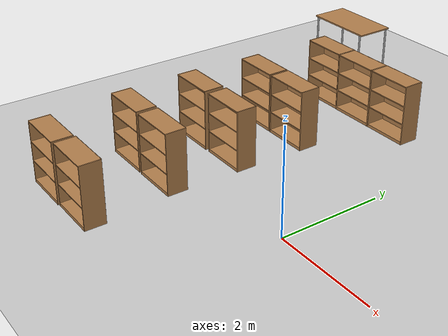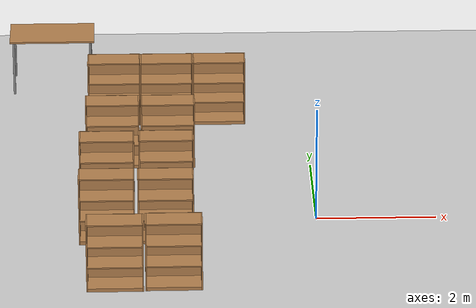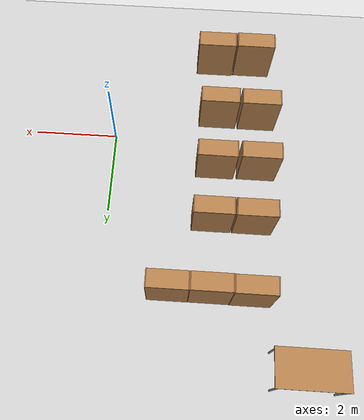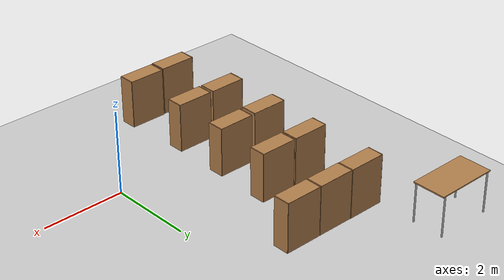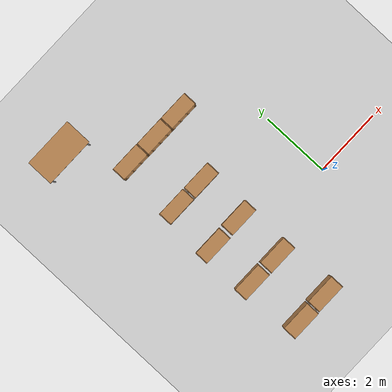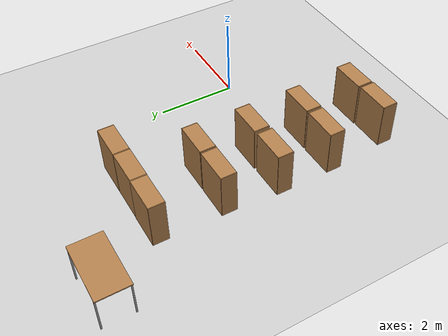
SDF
<sdf version="1.7">
 <world name="default">
  <model name="ground_plane">
   <static>1</static>
   <link name="link">
    <collision name="collision">
     <geometry><plane><normal>0 0 1</normal><size>100 100</size></plane></geometry>
     <surface>
      <contact><collide_bitmask>65535</collide_bitmask></contact>
      <friction><ode><mu>100</mu><mu2>50</mu2></ode></friction>
     </surface>
    </collision>
    <visual name="visual">
     <cast_shadows>0</cast_shadows>
     <geometry><plane><normal>0 0 1</normal><size>100 100</size></plane></geometry>
     <material>
      <script><uri>file://media/materials/scripts/gazebo.material</uri><name>Gazebo/Grey</name></script>
     </material>
    </visual>
   </link>
  </model>
  <model name="bookshelf">
   <static>1</static>
   <link name="link">
    <inertial><mass>1</mass></inertial>
    <collision name="back">
     <pose>0 0.005 0.6 0 -0 0</pose>
     <geometry><box><size>0.9 0.01 1.2</size></box></geometry>
    </collision>
    <visual name="visual1">
     <pose>0 0.005 0.6 0 -0 0</pose>
     <geometry><box><size>0.9 0.01 1.2</size></box></geometry>
     <material>
      <script><uri>file://media/materials/scripts/gazebo.material</uri><name>Gazebo/Wood</name></script>
     </material>
    </visual>
    <collision name="left_side">
     <pose>0.45 -0.195 0.6 0 -0 0</pose>
     <geometry><box><size>0.02 0.4 1.2</size></box></geometry>
    </collision>
    <visual name="visual2">
     <pose>0.45 -0.195 0.6 0 -0 0</pose>
     <geometry><box><size>0.02 0.4 1.2</size></box></geometry>
     <material>
      <script><uri>file://media/materials/scripts/gazebo.material</uri><name>Gazebo/Wood</name></script>
     </material>
    </visual>
    <collision name="right_side">
     <pose>-0.45 -0.195 0.6 0 -0 0</pose>
     <geometry><box><size>0.02 0.4 1.2</size></box></geometry>
    </collision>
    <visual name="visual3">
     <pose>-0.45 -0.195 0.6 0 -0 0</pose>
     <geometry><box><size>0.02 0.4 1.2</size></box></geometry>
     <material>
      <script><uri>file://media/materials/scripts/gazebo.material</uri><name>Gazebo/Wood</name></script>
     </material>
    </visual>
    <collision name="bottom">
     <pose>0 -0.195 0.03 0 -0 0</pose>
     <geometry><box><size>0.88 0.4 0.06</size></box></geometry>
    </collision>
    <visual name="visual4">
     <pose>0 -0.195 0.03 0 -0 0</pose>
     <geometry><box><size>0.88 0.4 0.06</size></box></geometry>
     <material>
      <script><uri>file://media/materials/scripts/gazebo.material</uri><name>Gazebo/Wood</name></script>
     </material>
    </visual>
    <collision name="top">
     <pose>0 -0.195 1.19 0 -0 0</pose>
     <geometry><box><size>0.88 0.4 0.02</size></box></geometry>
    </collision>
    <visual name="visual5">
     <pose>0 -0.195 1.19 0 -0 0</pose>
     <geometry><box><size>0.88 0.4 0.02</size></box></geometry>
     <material>
      <script><uri>file://media/materials/scripts/gazebo.material</uri><name>Gazebo/Wood</name></script>
     </material>
    </visual>
    <collision name="low_shelf">
     <pose>0 -0.195 0.43 0 -0 0</pose>
     <geometry><box><size>0.88 0.4 0.02</size></box></geometry>
    </collision>
    <visual name="visual6">
     <pose>0 -0.195 0.43 0 -0 0</pose>
     <geometry><box><size>0.88 0.4 0.02</size></box></geometry>
     <material>
      <script><uri>file://media/materials/scripts/gazebo.material</uri><name>Gazebo/Wood</name></script>
     </material>
    </visual>
    <collision name="high_shelf">
     <pose>0 -0.195 0.8 0 -0 0</pose>
     <geometry><box><size>0.88 0.4 0.02</size></box></geometry>
    </collision>
    <visual name="visual7">
     <pose>0 -0.195 0.8 0 -0 0</pose>
     <geometry><box><size>0.88 0.4 0.02</size></box></geometry>
     <material>
      <script><uri>file://media/materials/scripts/gazebo.material</uri><name>Gazebo/Wood</name></script>
     </material>
    </visual>
   </link>
   <pose>-3.36376 4.05845 0 0 -0 0</pose>
  </model>
  <model name="bookshelf_0">
   <static>1</static>
   <link name="link">
    <inertial><mass>1</mass></inertial>
    <collision name="back">
     <pose>0 0.005 0.6 0 -0 0</pose>
     <geometry><box><size>0.9 0.01 1.2</size></box></geometry>
    </collision>
    <visual name="visual1">
     <pose>0 0.005 0.6 0 -0 0</pose>
     <geometry><box><size>0.9 0.01 1.2</size></box></geometry>
     <material>
      <script><uri>file://media/materials/scripts/gazebo.material</uri><name>Gazebo/Wood</name></script>
     </material>
    </visual>
    <collision name="left_side">
     <pose>0.45 -0.195 0.6 0 -0 0</pose>
     <geometry><box><size>0.02 0.4 1.2</size></box></geometry>
    </collision>
    <visual name="visual2">
     <pose>0.45 -0.195 0.6 0 -0 0</pose>
     <geometry><box><size>0.02 0.4 1.2</size></box></geometry>
     <material>
      <script><uri>file://media/materials/scripts/gazebo.material</uri><name>Gazebo/Wood</name></script>
     </material>
    </visual>
    <collision name="right_side">
     <pose>-0.45 -0.195 0.6 0 -0 0</pose>
     <geometry><box><size>0.02 0.4 1.2</size></box></geometry>
    </collision>
    <visual name="visual3">
     <pose>-0.45 -0.195 0.6 0 -0 0</pose>
     <geometry><box><size>0.02 0.4 1.2</size></box></geometry>
     <material>
      <script><uri>file://media/materials/scripts/gazebo.material</uri><name>Gazebo/Wood</name></script>
     </material>
    </visual>
    <collision name="bottom">
     <pose>0 -0.195 0.03 0 -0 0</pose>
     <geometry><box><size>0.88 0.4 0.06</size></box></geometry>
    </collision>
    <visual name="visual4">
     <pose>0 -0.195 0.03 0 -0 0</pose>
     <geometry><box><size>0.88 0.4 0.06</size></box></geometry>
     <material>
      <script><uri>file://media/materials/scripts/gazebo.material</uri><name>Gazebo/Wood</name></script>
     </material>
    </visual>
    <collision name="top">
     <pose>0 -0.195 1.19 0 -0 0</pose>
     <geometry><box><size>0.88 0.4 0.02</size></box></geometry>
    </collision>
    <visual name="visual5">
     <pose>0 -0.195 1.19 0 -0 0</pose>
     <geometry><box><size>0.88 0.4 0.02</size></box></geometry>
     <material>
      <script><uri>file://media/materials/scripts/gazebo.material</uri><name>Gazebo/Wood</name></script>
     </material>
    </visual>
    <collision name="low_shelf">
     <pose>0 -0.195 0.43 0 -0 0</pose>
     <geometry><box><size>0.88 0.4 0.02</size></box></geometry>
    </collision>
    <visual name="visual6">
     <pose>0 -0.195 0.43 0 -0 0</pose>
     <geometry><box><size>0.88 0.4 0.02</size></box></geometry>
     <material>
      <script><uri>file://media/materials/scripts/gazebo.material</uri><name>Gazebo/Wood</name></script>
     </material>
    </visual>
    <collision name="high_shelf">
     <pose>0 -0.195 0.8 0 -0 0</pose>
     <geometry><box><size>0.88 0.4 0.02</size></box></geometry>
    </collision>
    <visual name="visual7">
     <pose>0 -0.195 0.8 0 -0 0</pose>
     <geometry><box><size>0.88 0.4 0.02</size></box></geometry>
     <material>
      <script><uri>file://media/materials/scripts/gazebo.material</uri><name>Gazebo/Wood</name></script>
     </material>
    </visual>
   </link>
   <pose>-2.44784 4.05211 0 0 -0 0</pose>
  </model>
  <model name="bookshelf_1">
   <static>1</static>
   <link name="link">
    <inertial><mass>1</mass></inertial>
    <collision name="back">
     <pose>0 0.005 0.6 0 -0 0</pose>
     <geometry><box><size>0.9 0.01 1.2</size></box></geometry>
    </collision>
    <visual name="visual1">
     <pose>0 0.005 0.6 0 -0 0</pose>
     <geometry><box><size>0.9 0.01 1.2</size></box></geometry>
     <material>
      <script><uri>file://media/materials/scripts/gazebo.material</uri><name>Gazebo/Wood</name></script>
     </material>
    </visual>
    <collision name="left_side">
     <pose>0.45 -0.195 0.6 0 -0 0</pose>
     <geometry><box><size>0.02 0.4 1.2</size></box></geometry>
    </collision>
    <visual name="visual2">
     <pose>0.45 -0.195 0.6 0 -0 0</pose>
     <geometry><box><size>0.02 0.4 1.2</size></box></geometry>
     <material>
      <script><uri>file://media/materials/scripts/gazebo.material</uri><name>Gazebo/Wood</name></script>
     </material>
    </visual>
    <collision name="right_side">
     <pose>-0.45 -0.195 0.6 0 -0 0</pose>
     <geometry><box><size>0.02 0.4 1.2</size></box></geometry>
    </collision>
    <visual name="visual3">
     <pose>-0.45 -0.195 0.6 0 -0 0</pose>
     <geometry><box><size>0.02 0.4 1.2</size></box></geometry>
     <material>
      <script><uri>file://media/materials/scripts/gazebo.material</uri><name>Gazebo/Wood</name></script>
     </material>
    </visual>
    <collision name="bottom">
     <pose>0 -0.195 0.03 0 -0 0</pose>
     <geometry><box><size>0.88 0.4 0.06</size></box></geometry>
    </collision>
    <visual name="visual4">
     <pose>0 -0.195 0.03 0 -0 0</pose>
     <geometry><box><size>0.88 0.4 0.06</size></box></geometry>
     <material>
      <script><uri>file://media/materials/scripts/gazebo.material</uri><name>Gazebo/Wood</name></script>
     </material>
    </visual>
    <collision name="top">
     <pose>0 -0.195 1.19 0 -0 0</pose>
     <geometry><box><size>0.88 0.4 0.02</size></box></geometry>
    </collision>
    <visual name="visual5">
     <pose>0 -0.195 1.19 0 -0 0</pose>
     <geometry><box><size>0.88 0.4 0.02</size></box></geometry>
     <material>
      <script><uri>file://media/materials/scripts/gazebo.material</uri><name>Gazebo/Wood</name></script>
     </material>
    </visual>
    <collision name="low_shelf">
     <pose>0 -0.195 0.43 0 -0 0</pose>
     <geometry><box><size>0.88 0.4 0.02</size></box></geometry>
    </collision>
    <visual name="visual6">
     <pose>0 -0.195 0.43 0 -0 0</pose>
     <geometry><box><size>0.88 0.4 0.02</size></box></geometry>
     <material>
      <script><uri>file://media/materials/scripts/gazebo.material</uri><name>Gazebo/Wood</name></script>
     </material>
    </visual>
    <collision name="high_shelf">
     <pose>0 -0.195 0.8 0 -0 0</pose>
     <geometry><box><size>0.88 0.4 0.02</size></box></geometry>
    </collision>
    <visual name="visual7">
     <pose>0 -0.195 0.8 0 -0 0</pose>
     <geometry><box><size>0.88 0.4 0.02</size></box></geometry>
     <material>
      <script><uri>file://media/materials/scripts/gazebo.material</uri><name>Gazebo/Wood</name></script>
     </material>
    </visual>
   </link>
   <pose>-1.52934 4.05379 0 0 -0 0</pose>
  </model>
  <model name="bookshelf_9">
   <static>1</static>
   <link name="link">
    <inertial><mass>1</mass></inertial>
    <collision name="back">
     <pose>0 0.005 0.6 0 -0 0</pose>
     <geometry><box><size>0.9 0.01 1.2</size></box></geometry>
    </collision>
    <visual name="visual1">
     <pose>0 0.005 0.6 0 -0 0</pose>
     <geometry><box><size>0.9 0.01 1.2</size></box></geometry>
     <material>
      <script><uri>file://media/materials/scripts/gazebo.material</uri><name>Gazebo/Wood</name></script>
     </material>
    </visual>
    <collision name="left_side">
     <pose>0.45 -0.195 0.6 0 -0 0</pose>
     <geometry><box><size>0.02 0.4 1.2</size></box></geometry>
    </collision>
    <visual name="visual2">
     <pose>0.45 -0.195 0.6 0 -0 0</pose>
     <geometry><box><size>0.02 0.4 1.2</size></box></geometry>
     <material>
      <script><uri>file://media/materials/scripts/gazebo.material</uri><name>Gazebo/Wood</name></script>
     </material>
    </visual>
    <collision name="right_side">
     <pose>-0.45 -0.195 0.6 0 -0 0</pose>
     <geometry><box><size>0.02 0.4 1.2</size></box></geometry>
    </collision>
    <visual name="visual3">
     <pose>-0.45 -0.195 0.6 0 -0 0</pose>
     <geometry><box><size>0.02 0.4 1.2</size></box></geometry>
     <material>
      <script><uri>file://media/materials/scripts/gazebo.material</uri><name>Gazebo/Wood</name></script>
     </material>
    </visual>
    <collision name="bottom">
     <pose>0 -0.195 0.03 0 -0 0</pose>
     <geometry><box><size>0.88 0.4 0.06</size></box></geometry>
    </collision>
    <visual name="visual4">
     <pose>0 -0.195 0.03 0 -0 0</pose>
     <geometry><box><size>0.88 0.4 0.06</size></box></geometry>
     <material>
      <script><uri>file://media/materials/scripts/gazebo.material</uri><name>Gazebo/Wood</name></script>
     </material>
    </visual>
    <collision name="top">
     <pose>0 -0.195 1.19 0 -0 0</pose>
     <geometry><box><size>0.88 0.4 0.02</size></box></geometry>
    </collision>
    <visual name="visual5">
     <pose>0 -0.195 1.19 0 -0 0</pose>
     <geometry><box><size>0.88 0.4 0.02</size></box></geometry>
     <material>
      <script><uri>file://media/materials/scripts/gazebo.material</uri><name>Gazebo/Wood</name></script>
     </material>
    </visual>
    <collision name="low_shelf">
     <pose>0 -0.195 0.43 0 -0 0</pose>
     <geometry><box><size>0.88 0.4 0.02</size></box></geometry>
    </collision>
    <visual name="visual6">
     <pose>0 -0.195 0.43 0 -0 0</pose>
     <geometry><box><size>0.88 0.4 0.02</size></box></geometry>
     <material>
      <script><uri>file://media/materials/scripts/gazebo.material</uri><name>Gazebo/Wood</name></script>
     </material>
    </visual>
    <collision name="high_shelf">
     <pose>0 -0.195 0.8 0 -0 0</pose>
     <geometry><box><size>0.88 0.4 0.02</size></box></geometry>
    </collision>
    <visual name="visual7">
     <pose>0 -0.195 0.8 0 -0 0</pose>
     <geometry><box><size>0.88 0.4 0.02</size></box></geometry>
     <material>
      <script><uri>file://media/materials/scripts/gazebo.material</uri><name>Gazebo/Wood</name></script>
     </material>
    </visual>
   </link>
   <pose>-2.44539 2.36269 0 0 -0 0</pose>
  </model>
  <model name="bookshelf_10">
   <static>1</static>
   <link name="link">
    <inertial><mass>1</mass></inertial>
    <collision name="back">
     <pose>0 0.005 0.6 0 -0 0</pose>
     <geometry><box><size>0.9 0.01 1.2</size></box></geometry>
    </collision>
    <visual name="visual1">
     <pose>0 0.005 0.6 0 -0 0</pose>
     <geometry><box><size>0.9 0.01 1.2</size></box></geometry>
     <material>
      <script><uri>file://media/materials/scripts/gazebo.material</uri><name>Gazebo/Wood</name></script>
     </material>
    </visual>
    <collision name="left_side">
     <pose>0.45 -0.195 0.6 0 -0 0</pose>
     <geometry><box><size>0.02 0.4 1.2</size></box></geometry>
    </collision>
    <visual name="visual2">
     <pose>0.45 -0.195 0.6 0 -0 0</pose>
     <geometry><box><size>0.02 0.4 1.2</size></box></geometry>
     <material>
      <script><uri>file://media/materials/scripts/gazebo.material</uri><name>Gazebo/Wood</name></script>
     </material>
    </visual>
    <collision name="right_side">
     <pose>-0.45 -0.195 0.6 0 -0 0</pose>
     <geometry><box><size>0.02 0.4 1.2</size></box></geometry>
    </collision>
    <visual name="visual3">
     <pose>-0.45 -0.195 0.6 0 -0 0</pose>
     <geometry><box><size>0.02 0.4 1.2</size></box></geometry>
     <material>
      <script><uri>file://media/materials/scripts/gazebo.material</uri><name>Gazebo/Wood</name></script>
     </material>
    </visual>
    <collision name="bottom">
     <pose>0 -0.195 0.03 0 -0 0</pose>
     <geometry><box><size>0.88 0.4 0.06</size></box></geometry>
    </collision>
    <visual name="visual4">
     <pose>0 -0.195 0.03 0 -0 0</pose>
     <geometry><box><size>0.88 0.4 0.06</size></box></geometry>
     <material>
      <script><uri>file://media/materials/scripts/gazebo.material</uri><name>Gazebo/Wood</name></script>
     </material>
    </visual>
    <collision name="top">
     <pose>0 -0.195 1.19 0 -0 0</pose>
     <geometry><box><size>0.88 0.4 0.02</size></box></geometry>
    </collision>
    <visual name="visual5">
     <pose>0 -0.195 1.19 0 -0 0</pose>
     <geometry><box><size>0.88 0.4 0.02</size></box></geometry>
     <material>
      <script><uri>file://media/materials/scripts/gazebo.material</uri><name>Gazebo/Wood</name></script>
     </material>
    </visual>
    <collision name="low_shelf">
     <pose>0 -0.195 0.43 0 -0 0</pose>
     <geometry><box><size>0.88 0.4 0.02</size></box></geometry>
    </collision>
    <visual name="visual6">
     <pose>0 -0.195 0.43 0 -0 0</pose>
     <geometry><box><size>0.88 0.4 0.02</size></box></geometry>
     <material>
      <script><uri>file://media/materials/scripts/gazebo.material</uri><name>Gazebo/Wood</name></script>
     </material>
    </visual>
    <collision name="high_shelf">
     <pose>0 -0.195 0.8 0 -0 0</pose>
     <geometry><box><size>0.88 0.4 0.02</size></box></geometry>
    </collision>
    <visual name="visual7">
     <pose>0 -0.195 0.8 0 -0 0</pose>
     <geometry><box><size>0.88 0.4 0.02</size></box></geometry>
     <material>
      <script><uri>file://media/materials/scripts/gazebo.material</uri><name>Gazebo/Wood</name></script>
     </material>
    </visual>
   </link>
   <pose>-3.39073 2.36423 0 0 -0 0</pose>
  </model>
  <model name="bookshelf_11">
   <static>1</static>
   <link name="link">
    <inertial><mass>1</mass></inertial>
    <collision name="back">
     <pose>0 0.005 0.6 0 -0 0</pose>
     <geometry><box><size>0.9 0.01 1.2</size></box></geometry>
    </collision>
    <visual name="visual1">
     <pose>0 0.005 0.6 0 -0 0</pose>
     <geometry><box><size>0.9 0.01 1.2</size></box></geometry>
     <material>
      <script><uri>file://media/materials/scripts/gazebo.material</uri><name>Gazebo/Wood</name></script>
     </material>
    </visual>
    <collision name="left_side">
     <pose>0.45 -0.195 0.6 0 -0 0</pose>
     <geometry><box><size>0.02 0.4 1.2</size></box></geometry>
    </collision>
    <visual name="visual2">
     <pose>0.45 -0.195 0.6 0 -0 0</pose>
     <geometry><box><size>0.02 0.4 1.2</size></box></geometry>
     <material>
      <script><uri>file://media/materials/scripts/gazebo.material</uri><name>Gazebo/Wood</name></script>
     </material>
    </visual>
    <collision name="right_side">
     <pose>-0.45 -0.195 0.6 0 -0 0</pose>
     <geometry><box><size>0.02 0.4 1.2</size></box></geometry>
    </collision>
    <visual name="visual3">
     <pose>-0.45 -0.195 0.6 0 -0 0</pose>
     <geometry><box><size>0.02 0.4 1.2</size></box></geometry>
     <material>
      <script><uri>file://media/materials/scripts/gazebo.material</uri><name>Gazebo/Wood</name></script>
     </material>
    </visual>
    <collision name="bottom">
     <pose>0 -0.195 0.03 0 -0 0</pose>
     <geometry><box><size>0.88 0.4 0.06</size></box></geometry>
    </collision>
    <visual name="visual4">
     <pose>0 -0.195 0.03 0 -0 0</pose>
     <geometry><box><size>0.88 0.4 0.06</size></box></geometry>
     <material>
      <script><uri>file://media/materials/scripts/gazebo.material</uri><name>Gazebo/Wood</name></script>
     </material>
    </visual>
    <collision name="top">
     <pose>0 -0.195 1.19 0 -0 0</pose>
     <geometry><box><size>0.88 0.4 0.02</size></box></geometry>
    </collision>
    <visual name="visual5">
     <pose>0 -0.195 1.19 0 -0 0</pose>
     <geometry><box><size>0.88 0.4 0.02</size></box></geometry>
     <material>
      <script><uri>file://media/materials/scripts/gazebo.material</uri><name>Gazebo/Wood</name></script>
     </material>
    </visual>
    <collision name="low_shelf">
     <pose>0 -0.195 0.43 0 -0 0</pose>
     <geometry><box><size>0.88 0.4 0.02</size></box></geometry>
    </collision>
    <visual name="visual6">
     <pose>0 -0.195 0.43 0 -0 0</pose>
     <geometry><box><size>0.88 0.4 0.02</size></box></geometry>
     <material>
      <script><uri>file://media/materials/scripts/gazebo.material</uri><name>Gazebo/Wood</name></script>
     </material>
    </visual>
    <collision name="high_shelf">
     <pose>0 -0.195 0.8 0 -0 0</pose>
     <geometry><box><size>0.88 0.4 0.02</size></box></geometry>
    </collision>
    <visual name="visual7">
     <pose>0 -0.195 0.8 0 -0 0</pose>
     <geometry><box><size>0.88 0.4 0.02</size></box></geometry>
     <material>
      <script><uri>file://media/materials/scripts/gazebo.material</uri><name>Gazebo/Wood</name></script>
     </material>
    </visual>
   </link>
   <pose>-3.48659 0.963539 0 0 -0 0</pose>
  </model>
  <model name="bookshelf_12">
   <static>1</static>
   <link name="link">
    <inertial><mass>1</mass></inertial>
    <collision name="back">
     <pose>0 0.005 0.6 0 -0 0</pose>
     <geometry><box><size>0.9 0.01 1.2</size></box></geometry>
    </collision>
    <visual name="visual1">
     <pose>0 0.005 0.6 0 -0 0</pose>
     <geometry><box><size>0.9 0.01 1.2</size></box></geometry>
     <material>
      <script><uri>file://media/materials/scripts/gazebo.material</uri><name>Gazebo/Wood</name></script>
     </material>
    </visual>
    <collision name="left_side">
     <pose>0.45 -0.195 0.6 0 -0 0</pose>
     <geometry><box><size>0.02 0.4 1.2</size></box></geometry>
    </collision>
    <visual name="visual2">
     <pose>0.45 -0.195 0.6 0 -0 0</pose>
     <geometry><box><size>0.02 0.4 1.2</size></box></geometry>
     <material>
      <script><uri>file://media/materials/scripts/gazebo.material</uri><name>Gazebo/Wood</name></script>
     </material>
    </visual>
    <collision name="right_side">
     <pose>-0.45 -0.195 0.6 0 -0 0</pose>
     <geometry><box><size>0.02 0.4 1.2</size></box></geometry>
    </collision>
    <visual name="visual3">
     <pose>-0.45 -0.195 0.6 0 -0 0</pose>
     <geometry><box><size>0.02 0.4 1.2</size></box></geometry>
     <material>
      <script><uri>file://media/materials/scripts/gazebo.material</uri><name>Gazebo/Wood</name></script>
     </material>
    </visual>
    <collision name="bottom">
     <pose>0 -0.195 0.03 0 -0 0</pose>
     <geometry><box><size>0.88 0.4 0.06</size></box></geometry>
    </collision>
    <visual name="visual4">
     <pose>0 -0.195 0.03 0 -0 0</pose>
     <geometry><box><size>0.88 0.4 0.06</size></box></geometry>
     <material>
      <script><uri>file://media/materials/scripts/gazebo.material</uri><name>Gazebo/Wood</name></script>
     </material>
    </visual>
    <collision name="top">
     <pose>0 -0.195 1.19 0 -0 0</pose>
     <geometry><box><size>0.88 0.4 0.02</size></box></geometry>
    </collision>
    <visual name="visual5">
     <pose>0 -0.195 1.19 0 -0 0</pose>
     <geometry><box><size>0.88 0.4 0.02</size></box></geometry>
     <material>
      <script><uri>file://media/materials/scripts/gazebo.material</uri><name>Gazebo/Wood</name></script>
     </material>
    </visual>
    <collision name="low_shelf">
     <pose>0 -0.195 0.43 0 -0 0</pose>
     <geometry><box><size>0.88 0.4 0.02</size></box></geometry>
    </collision>
    <visual name="visual6">
     <pose>0 -0.195 0.43 0 -0 0</pose>
     <geometry><box><size>0.88 0.4 0.02</size></box></geometry>
     <material>
      <script><uri>file://media/materials/scripts/gazebo.material</uri><name>Gazebo/Wood</name></script>
     </material>
    </visual>
    <collision name="high_shelf">
     <pose>0 -0.195 0.8 0 -0 0</pose>
     <geometry><box><size>0.88 0.4 0.02</size></box></geometry>
    </collision>
    <visual name="visual7">
     <pose>0 -0.195 0.8 0 -0 0</pose>
     <geometry><box><size>0.88 0.4 0.02</size></box></geometry>
     <material>
      <script><uri>file://media/materials/scripts/gazebo.material</uri><name>Gazebo/Wood</name></script>
     </material>
    </visual>
   </link>
   <pose>-2.48969 0.976329 0 0 -0 0</pose>
  </model>
  <model name="bookshelf_17">
   <static>1</static>
   <link name="link">
    <inertial><mass>1</mass></inertial>
    <collision name="back">
     <pose>0 0.005 0.6 0 -0 0</pose>
     <geometry><box><size>0.9 0.01 1.2</size></box></geometry>
    </collision>
    <visual name="visual1">
     <pose>0 0.005 0.6 0 -0 0</pose>
     <geometry><box><size>0.9 0.01 1.2</size></box></geometry>
     <material>
      <script><uri>file://media/materials/scripts/gazebo.material</uri><name>Gazebo/Wood</name></script>
     </material>
    </visual>
    <collision name="left_side">
     <pose>0.45 -0.195 0.6 0 -0 0</pose>
     <geometry><box><size>0.02 0.4 1.2</size></box></geometry>
    </collision>
    <visual name="visual2">
     <pose>0.45 -0.195 0.6 0 -0 0</pose>
     <geometry><box><size>0.02 0.4 1.2</size></box></geometry>
     <material>
      <script><uri>file://media/materials/scripts/gazebo.material</uri><name>Gazebo/Wood</name></script>
     </material>
    </visual>
    <collision name="right_side">
     <pose>-0.45 -0.195 0.6 0 -0 0</pose>
     <geometry><box><size>0.02 0.4 1.2</size></box></geometry>
    </collision>
    <visual name="visual3">
     <pose>-0.45 -0.195 0.6 0 -0 0</pose>
     <geometry><box><size>0.02 0.4 1.2</size></box></geometry>
     <material>
      <script><uri>file://media/materials/scripts/gazebo.material</uri><name>Gazebo/Wood</name></script>
     </material>
    </visual>
    <collision name="bottom">
     <pose>0 -0.195 0.03 0 -0 0</pose>
     <geometry><box><size>0.88 0.4 0.06</size></box></geometry>
    </collision>
    <visual name="visual4">
     <pose>0 -0.195 0.03 0 -0 0</pose>
     <geometry><box><size>0.88 0.4 0.06</size></box></geometry>
     <material>
      <script><uri>file://media/materials/scripts/gazebo.material</uri><name>Gazebo/Wood</name></script>
     </material>
    </visual>
    <collision name="top">
     <pose>0 -0.195 1.19 0 -0 0</pose>
     <geometry><box><size>0.88 0.4 0.02</size></box></geometry>
    </collision>
    <visual name="visual5">
     <pose>0 -0.195 1.19 0 -0 0</pose>
     <geometry><box><size>0.88 0.4 0.02</size></box></geometry>
     <material>
      <script><uri>file://media/materials/scripts/gazebo.material</uri><name>Gazebo/Wood</name></script>
     </material>
    </visual>
    <collision name="low_shelf">
     <pose>0 -0.195 0.43 0 -0 0</pose>
     <geometry><box><size>0.88 0.4 0.02</size></box></geometry>
    </collision>
    <visual name="visual6">
     <pose>0 -0.195 0.43 0 -0 0</pose>
     <geometry><box><size>0.88 0.4 0.02</size></box></geometry>
     <material>
      <script><uri>file://media/materials/scripts/gazebo.material</uri><name>Gazebo/Wood</name></script>
     </material>
    </visual>
    <collision name="high_shelf">
     <pose>0 -0.195 0.8 0 -0 0</pose>
     <geometry><box><size>0.88 0.4 0.02</size></box></geometry>
    </collision>
    <visual name="visual7">
     <pose>0 -0.195 0.8 0 -0 0</pose>
     <geometry><box><size>0.88 0.4 0.02</size></box></geometry>
     <material>
      <script><uri>file://media/materials/scripts/gazebo.material</uri><name>Gazebo/Wood</name></script>
     </material>
    </visual>
   </link>
   <pose>-3.48671 -0.442995 0 0 -0 0</pose>
  </model>
  <model name="bookshelf_18">
   <static>1</static>
   <link name="link">
    <inertial><mass>1</mass></inertial>
    <collision name="back">
     <pose>0 0.005 0.6 0 -0 0</pose>
     <geometry><box><size>0.9 0.01 1.2</size></box></geometry>
    </collision>
    <visual name="visual1">
     <pose>0 0.005 0.6 0 -0 0</pose>
     <geometry><box><size>0.9 0.01 1.2</size></box></geometry>
     <material>
      <script><uri>file://media/materials/scripts/gazebo.material</uri><name>Gazebo/Wood</name></script>
     </material>
    </visual>
    <collision name="left_side">
     <pose>0.45 -0.195 0.6 0 -0 0</pose>
     <geometry><box><size>0.02 0.4 1.2</size></box></geometry>
    </collision>
    <visual name="visual2">
     <pose>0.45 -0.195 0.6 0 -0 0</pose>
     <geometry><box><size>0.02 0.4 1.2</size></box></geometry>
     <material>
      <script><uri>file://media/materials/scripts/gazebo.material</uri><name>Gazebo/Wood</name></script>
     </material>
    </visual>
    <collision name="right_side">
     <pose>-0.45 -0.195 0.6 0 -0 0</pose>
     <geometry><box><size>0.02 0.4 1.2</size></box></geometry>
    </collision>
    <visual name="visual3">
     <pose>-0.45 -0.195 0.6 0 -0 0</pose>
     <geometry><box><size>0.02 0.4 1.2</size></box></geometry>
     <material>
      <script><uri>file://media/materials/scripts/gazebo.material</uri><name>Gazebo/Wood</name></script>
     </material>
    </visual>
    <collision name="bottom">
     <pose>0 -0.195 0.03 0 -0 0</pose>
     <geometry><box><size>0.88 0.4 0.06</size></box></geometry>
    </collision>
    <visual name="visual4">
     <pose>0 -0.195 0.03 0 -0 0</pose>
     <geometry><box><size>0.88 0.4 0.06</size></box></geometry>
     <material>
      <script><uri>file://media/materials/scripts/gazebo.material</uri><name>Gazebo/Wood</name></script>
     </material>
    </visual>
    <collision name="top">
     <pose>0 -0.195 1.19 0 -0 0</pose>
     <geometry><box><size>0.88 0.4 0.02</size></box></geometry>
    </collision>
    <visual name="visual5">
     <pose>0 -0.195 1.19 0 -0 0</pose>
     <geometry><box><size>0.88 0.4 0.02</size></box></geometry>
     <material>
      <script><uri>file://media/materials/scripts/gazebo.material</uri><name>Gazebo/Wood</name></script>
     </material>
    </visual>
    <collision name="low_shelf">
     <pose>0 -0.195 0.43 0 -0 0</pose>
     <geometry><box><size>0.88 0.4 0.02</size></box></geometry>
    </collision>
    <visual name="visual6">
     <pose>0 -0.195 0.43 0 -0 0</pose>
     <geometry><box><size>0.88 0.4 0.02</size></box></geometry>
     <material>
      <script><uri>file://media/materials/scripts/gazebo.material</uri><name>Gazebo/Wood</name></script>
     </material>
    </visual>
    <collision name="high_shelf">
     <pose>0 -0.195 0.8 0 -0 0</pose>
     <geometry><box><size>0.88 0.4 0.02</size></box></geometry>
    </collision>
    <visual name="visual7">
     <pose>0 -0.195 0.8 0 -0 0</pose>
     <geometry><box><size>0.88 0.4 0.02</size></box></geometry>
     <material>
      <script><uri>file://media/materials/scripts/gazebo.material</uri><name>Gazebo/Wood</name></script>
     </material>
    </visual>
   </link>
   <pose>-2.5153 -0.447156 0 0 -0 0</pose>
  </model>
  <model name="bookshelf_27">
   <static>1</static>
   <link name="link">
    <inertial><mass>1</mass></inertial>
    <collision name="back">
     <pose>0 0.005 0.6 0 -0 0</pose>
     <geometry><box><size>0.9 0.01 1.2</size></box></geometry>
    </collision>
    <visual name="visual1">
     <pose>0 0.005 0.6 0 -0 0</pose>
     <geometry><box><size>0.9 0.01 1.2</size></box></geometry>
     <material>
      <script><uri>file://media/materials/scripts/gazebo.material</uri><name>Gazebo/Wood</name></script>
     </material>
    </visual>
    <collision name="left_side">
     <pose>0.45 -0.195 0.6 0 -0 0</pose>
     <geometry><box><size>0.02 0.4 1.2</size></box></geometry>
    </collision>
    <visual name="visual2">
     <pose>0.45 -0.195 0.6 0 -0 0</pose>
     <geometry><box><size>0.02 0.4 1.2</size></box></geometry>
     <material>
      <script><uri>file://media/materials/scripts/gazebo.material</uri><name>Gazebo/Wood</name></script>
     </material>
    </visual>
    <collision name="right_side">
     <pose>-0.45 -0.195 0.6 0 -0 0</pose>
     <geometry><box><size>0.02 0.4 1.2</size></box></geometry>
    </collision>
    <visual name="visual3">
     <pose>-0.45 -0.195 0.6 0 -0 0</pose>
     <geometry><box><size>0.02 0.4 1.2</size></box></geometry>
     <material>
      <script><uri>file://media/materials/scripts/gazebo.material</uri><name>Gazebo/Wood</name></script>
     </material>
    </visual>
    <collision name="bottom">
     <pose>0 -0.195 0.03 0 -0 0</pose>
     <geometry><box><size>0.88 0.4 0.06</size></box></geometry>
    </collision>
    <visual name="visual4">
     <pose>0 -0.195 0.03 0 -0 0</pose>
     <geometry><box><size>0.88 0.4 0.06</size></box></geometry>
     <material>
      <script><uri>file://media/materials/scripts/gazebo.material</uri><name>Gazebo/Wood</name></script>
     </material>
    </visual>
    <collision name="top">
     <pose>0 -0.195 1.19 0 -0 0</pose>
     <geometry><box><size>0.88 0.4 0.02</size></box></geometry>
    </collision>
    <visual name="visual5">
     <pose>0 -0.195 1.19 0 -0 0</pose>
     <geometry><box><size>0.88 0.4 0.02</size></box></geometry>
     <material>
      <script><uri>file://media/materials/scripts/gazebo.material</uri><name>Gazebo/Wood</name></script>
     </material>
    </visual>
    <collision name="low_shelf">
     <pose>0 -0.195 0.43 0 -0 0</pose>
     <geometry><box><size>0.88 0.4 0.02</size></box></geometry>
    </collision>
    <visual name="visual6">
     <pose>0 -0.195 0.43 0 -0 0</pose>
     <geometry><box><size>0.88 0.4 0.02</size></box></geometry>
     <material>
      <script><uri>file://media/materials/scripts/gazebo.material</uri><name>Gazebo/Wood</name></script>
     </material>
    </visual>
    <collision name="high_shelf">
     <pose>0 -0.195 0.8 0 -0 0</pose>
     <geometry><box><size>0.88 0.4 0.02</size></box></geometry>
    </collision>
    <visual name="visual7">
     <pose>0 -0.195 0.8 0 -0 0</pose>
     <geometry><box><size>0.88 0.4 0.02</size></box></geometry>
     <material>
      <script><uri>file://media/materials/scripts/gazebo.material</uri><name>Gazebo/Wood</name></script>
     </material>
    </visual>
   </link>
   <pose>-2.40431 -2.06045 0 0 -0 0</pose>
  </model>
  <model name="bookshelf_28">
   <static>1</static>
   <link name="link">
    <inertial><mass>1</mass></inertial>
    <collision name="back">
     <pose>0 0.005 0.6 0 -0 0</pose>
     <geometry><box><size>0.9 0.01 1.2</size></box></geometry>
    </collision>
    <visual name="visual1">
     <pose>0 0.005 0.6 0 -0 0</pose>
     <geometry><box><size>0.9 0.01 1.2</size></box></geometry>
     <material>
      <script><uri>file://media/materials/scripts/gazebo.material</uri><name>Gazebo/Wood</name></script>
     </material>
    </visual>
    <collision name="left_side">
     <pose>0.45 -0.195 0.6 0 -0 0</pose>
     <geometry><box><size>0.02 0.4 1.2</size></box></geometry>
    </collision>
    <visual name="visual2">
     <pose>0.45 -0.195 0.6 0 -0 0</pose>
     <geometry><box><size>0.02 0.4 1.2</size></box></geometry>
     <material>
      <script><uri>file://media/materials/scripts/gazebo.material</uri><name>Gazebo/Wood</name></script>
     </material>
    </visual>
    <collision name="right_side">
     <pose>-0.45 -0.195 0.6 0 -0 0</pose>
     <geometry><box><size>0.02 0.4 1.2</size></box></geometry>
    </collision>
    <visual name="visual3">
     <pose>-0.45 -0.195 0.6 0 -0 0</pose>
     <geometry><box><size>0.02 0.4 1.2</size></box></geometry>
     <material>
      <script><uri>file://media/materials/scripts/gazebo.material</uri><name>Gazebo/Wood</name></script>
     </material>
    </visual>
    <collision name="bottom">
     <pose>0 -0.195 0.03 0 -0 0</pose>
     <geometry><box><size>0.88 0.4 0.06</size></box></geometry>
    </collision>
    <visual name="visual4">
     <pose>0 -0.195 0.03 0 -0 0</pose>
     <geometry><box><size>0.88 0.4 0.06</size></box></geometry>
     <material>
      <script><uri>file://media/materials/scripts/gazebo.material</uri><name>Gazebo/Wood</name></script>
     </material>
    </visual>
    <collision name="top">
     <pose>0 -0.195 1.19 0 -0 0</pose>
     <geometry><box><size>0.88 0.4 0.02</size></box></geometry>
    </collision>
    <visual name="visual5">
     <pose>0 -0.195 1.19 0 -0 0</pose>
     <geometry><box><size>0.88 0.4 0.02</size></box></geometry>
     <material>
      <script><uri>file://media/materials/scripts/gazebo.material</uri><name>Gazebo/Wood</name></script>
     </material>
    </visual>
    <collision name="low_shelf">
     <pose>0 -0.195 0.43 0 -0 0</pose>
     <geometry><box><size>0.88 0.4 0.02</size></box></geometry>
    </collision>
    <visual name="visual6">
     <pose>0 -0.195 0.43 0 -0 0</pose>
     <geometry><box><size>0.88 0.4 0.02</size></box></geometry>
     <material>
      <script><uri>file://media/materials/scripts/gazebo.material</uri><name>Gazebo/Wood</name></script>
     </material>
    </visual>
    <collision name="high_shelf">
     <pose>0 -0.195 0.8 0 -0 0</pose>
     <geometry><box><size>0.88 0.4 0.02</size></box></geometry>
    </collision>
    <visual name="visual7">
     <pose>0 -0.195 0.8 0 -0 0</pose>
     <geometry><box><size>0.88 0.4 0.02</size></box></geometry>
     <material>
      <script><uri>file://media/materials/scripts/gazebo.material</uri><name>Gazebo/Wood</name></script>
     </material>
    </visual>
   </link>
   <pose>-3.35187 -2.07958 0 0 -0 0</pose>
  </model>
  <model name="table">
   <static>1</static>
   <link name="link">
    <collision name="surface">
     <pose>0 0 1 0 -0 0</pose>
     <geometry><box><size>1.5 0.8 0.03</size></box></geometry>
     <surface><friction><ode><mu>0.6</mu><mu2>0.6</mu2></ode></friction></surface>
    </collision>
    <visual name="visual1">
     <pose>0 0 1 0 -0 0</pose>
     <geometry><box><size>1.5 0.8 0.03</size></box></geometry>
     <material>
      <script><uri>file://media/materials/scripts/gazebo.material</uri><name>Gazebo/Wood</name></script>
     </material>
    </visual>
    <collision name="front_left_leg">
     <pose>0.68 0.38 0.5 0 -0 0</pose>
     <geometry><cylinder><radius>0.02</radius><length>1</length></cylinder></geometry>
    </collision>
    <visual name="front_left_leg">
     <pose>0.68 0.38 0.5 0 -0 0</pose>
     <geometry><cylinder><radius>0.02</radius><length>1</length></cylinder></geometry>
     <material>
      <script><uri>file://media/materials/scripts/gazebo.material</uri><name>Gazebo/Grey</name></script>
     </material>
    </visual>
    <collision name="front_right_leg">
     <pose>0.68 -0.38 0.5 0 -0 0</pose>
     <geometry><cylinder><radius>0.02</radius><length>1</length></cylinder></geometry>
    </collision>
    <visual name="front_right_leg">
     <pose>0.68 -0.38 0.5 0 -0 0</pose>
     <geometry><cylinder><radius>0.02</radius><length>1</length></cylinder></geometry>
     <material>
      <script><uri>file://media/materials/scripts/gazebo.material</uri><name>Gazebo/Grey</name></script>
     </material>
    </visual>
    <collision name="back_right_leg">
     <pose>-0.68 -0.38 0.5 0 -0 0</pose>
     <geometry><cylinder><radius>0.02</radius><length>1</length></cylinder></geometry>
    </collision>
    <visual name="back_right_leg">
     <pose>-0.68 -0.38 0.5 0 -0 0</pose>
     <geometry><cylinder><radius>0.02</radius><length>1</length></cylinder></geometry>
     <material>
      <script><uri>file://media/materials/scripts/gazebo.material</uri><name>Gazebo/Grey</name></script>
     </material>
    </visual>
    <collision name="back_left_leg">
     <pose>-0.68 0.38 0.5 0 -0 0</pose>
     <geometry><cylinder><radius>0.02</radius><length>1</length></cylinder></geometry>
    </collision>
    <visual name="back_left_leg">
     <pose>-0.68 0.38 0.5 0 -0 0</pose>
     <geometry><cylinder><radius>0.02</radius><length>1</length></cylinder></geometry>
     <material>
      <script><uri>file://media/materials/scripts/gazebo.material</uri><name>Gazebo/Grey</name></script>
     </material>
    </visual>
   </link>
   <pose>-4.46939 5.4169 0 0 -0 0</pose>
  </model>
 </world>
</sdf>
